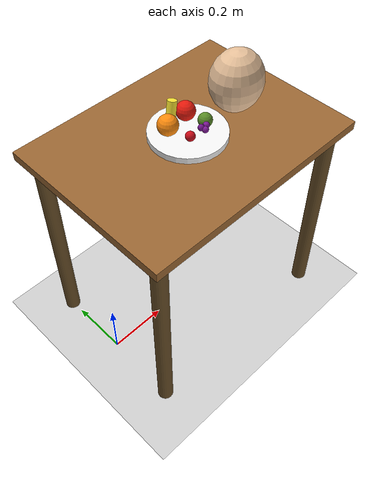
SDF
<?xml version="1.0" ?>
<sdf version="1.8">
  <world name="feeding_world">

    <!-- Physics -->
    <physics name="1ms" type="ignored">
      <max_step_size>0.001</max_step_size>
      <real_time_factor>1.0</real_time_factor>
    </physics>

    <!-- Plugins -->
    <plugin filename="gz-sim-physics-system" name="gz::sim::systems::Physics"/>
    <plugin filename="gz-sim-user-commands-system" name="gz::sim::systems::UserCommands"/>
    <plugin filename="gz-sim-scene-broadcaster-system" name="gz::sim::systems::SceneBroadcaster"/>
    <plugin filename="gz-sim-sensors-system" name="gz::sim::systems::Sensors">
      <render_engine>ogre2</render_engine>
    </plugin>

    <!-- Lighting -->
    <light type="directional" name="sun">
      <cast_shadows>true</cast_shadows>
      <pose>0 0 10 0 0 0</pose>
      <diffuse>0.8 0.8 0.8 1</diffuse>
      <specular>0.2 0.2 0.2 1</specular>
      <attenuation>
        <range>1000</range>
        <constant>0.9</constant>
        <linear>0.01</linear>
        <quadratic>0.001</quadratic>
      </attenuation>
      <direction>-0.5 0.1 -0.9</direction>
    </light>

    <!-- Ground Plane -->
    <model name="ground_plane">
      <static>true</static>
      <link name="link">
        <collision name="collision">
          <geometry>
            <plane>
              <normal>0 0 1</normal>
              <size>10 10</size>
            </plane>
          </geometry>
        </collision>
        <visual name="visual">
          <geometry>
            <plane>
              <normal>0 0 1</normal>
              <size>10 10</size>
            </plane>
          </geometry>
          <material>
            <ambient>0.8 0.8 0.8 1</ambient>
            <diffuse>0.8 0.8 0.8 1</diffuse>
          </material>
        </visual>
      </link>
    </model>

    <!-- ==================== FEEDING TABLE ==================== -->
    <model name="feeding_table">
      <static>true</static>
      <pose>0.35 0 0 0 0 0</pose>

      <!-- Table top -->
      <link name="table_top">
        <pose>0 0 0.74 0 0 0</pose>
        <collision name="collision">
          <geometry>
            <box>
              <size>0.8 0.6 0.03</size>
            </box>
          </geometry>
        </collision>
        <visual name="visual">
          <geometry>
            <box>
              <size>0.8 0.6 0.03</size>
            </box>
          </geometry>
          <material>
            <ambient>0.6 0.4 0.2 1</ambient>
            <diffuse>0.6 0.4 0.2 1</diffuse>
          </material>
        </visual>
      </link>

      <!-- Table legs -->
      <link name="leg1">
        <pose>-0.35 -0.25 0.37 0 0 0</pose>
        <collision name="collision">
          <geometry><cylinder><radius>0.025</radius><length>0.74</length></cylinder></geometry>
        </collision>
        <visual name="visual">
          <geometry><cylinder><radius>0.025</radius><length>0.74</length></cylinder></geometry>
          <material><ambient>0.4 0.3 0.15 1</ambient><diffuse>0.4 0.3 0.15 1</diffuse></material>
        </visual>
      </link>

      <link name="leg2">
        <pose>0.35 -0.25 0.37 0 0 0</pose>
        <collision name="collision">
          <geometry><cylinder><radius>0.025</radius><length>0.74</length></cylinder></geometry>
        </collision>
        <visual name="visual">
          <geometry><cylinder><radius>0.025</radius><length>0.74</length></cylinder></geometry>
          <material><ambient>0.4 0.3 0.15 1</ambient><diffuse>0.4 0.3 0.15 1</diffuse></material>
        </visual>
      </link>

      <link name="leg3">
        <pose>-0.35 0.25 0.37 0 0 0</pose>
        <collision name="collision">
          <geometry><cylinder><radius>0.025</radius><length>0.74</length></cylinder></geometry>
        </collision>
        <visual name="visual">
          <geometry><cylinder><radius>0.025</radius><length>0.74</length></cylinder></geometry>
          <material><ambient>0.4 0.3 0.15 1</ambient><diffuse>0.4 0.3 0.15 1</diffuse></material>
        </visual>
      </link>

      <link name="leg4">
        <pose>0.35 0.25 0.37 0 0 0</pose>
        <collision name="collision">
          <geometry><cylinder><radius>0.025</radius><length>0.74</length></cylinder></geometry>
        </collision>
        <visual name="visual">
          <geometry><cylinder><radius>0.025</radius><length>0.74</length></cylinder></geometry>
          <material><ambient>0.4 0.3 0.15 1</ambient><diffuse>0.4 0.3 0.15 1</diffuse></material>
        </visual>
      </link>

      <joint name="leg1_joint" type="fixed"><parent>table_top</parent><child>leg1</child></joint>
      <joint name="leg2_joint" type="fixed"><parent>table_top</parent><child>leg2</child></joint>
      <joint name="leg3_joint" type="fixed"><parent>table_top</parent><child>leg3</child></joint>
      <joint name="leg4_joint" type="fixed"><parent>table_top</parent><child>leg4</child></joint>
    </model>

    <!-- ==================== PLATE ==================== -->
    <model name="plate">
      <static>true</static>
      <pose>0.35 0 0.77 0 0 0</pose>
      <link name="plate_link">
        <collision name="collision">
          <geometry>
            <cylinder>
              <radius>0.12</radius>
              <length>0.02</length>
            </cylinder>
          </geometry>
        </collision>
        <visual name="visual">
          <geometry>
            <cylinder>
              <radius>0.12</radius>
              <length>0.02</length>
            </cylinder>
          </geometry>
          <material>
            <ambient>0.95 0.95 0.95 1</ambient>
            <diffuse>0.95 0.95 0.95 1</diffuse>
          </material>
        </visual>
      </link>
    </model>

    <!-- ==================== FRUITS ON PLATE ==================== -->

    <!-- Apple (RED) -->
    <model name="apple">
      <static>true</static>
      <pose>0.38 0.04 0.81 0 0 0</pose>
      <link name="apple_link">
        <collision name="collision">
          <geometry><sphere><radius>0.030</radius></sphere></geometry>
        </collision>
        <visual name="visual">
          <geometry><sphere><radius>0.030</radius></sphere></geometry>
          <material>
            <ambient>0.8 0.1 0.05 1</ambient>
            <diffuse>0.9 0.1 0.05 1</diffuse>
            <specular>0.3 0.1 0.1 1</specular>
          </material>
        </visual>
      </link>
    </model>

    <!-- Strawberry (DARK RED) -->
    <model name="strawberry">
      <static>true</static>
      <pose>0.32 -0.04 0.80 0 0 0</pose>
      <link name="strawberry_link">
        <collision name="collision">
          <geometry><sphere><radius>0.015</radius></sphere></geometry>
        </collision>
        <visual name="visual">
          <geometry><sphere><radius>0.015</radius></sphere></geometry>
          <material>
            <ambient>0.7 0.05 0.1 1</ambient>
            <diffuse>0.8 0.05 0.1 1</diffuse>
            <specular>0.3 0.1 0.1 1</specular>
          </material>
        </visual>
      </link>
    </model>

    <!-- Banana (YELLOW) -->
    <model name="banana">
      <static>true</static>
      <pose>0.34 0.06 0.80 0 0.3 0.5</pose>
      <link name="banana_link">
        <collision name="collision">
          <geometry>
            <cylinder>
              <radius>0.015</radius>
              <length>0.10</length>
            </cylinder>
          </geometry>
        </collision>
        <visual name="visual">
          <geometry>
            <cylinder>
              <radius>0.015</radius>
              <length>0.10</length>
            </cylinder>
          </geometry>
          <material>
            <ambient>0.95 0.9 0.15 1</ambient>
            <diffuse>1.0 0.92 0.2 1</diffuse>
            <specular>0.2 0.2 0.05 1</specular>
          </material>
        </visual>
      </link>
    </model>

    <!-- Grape cluster (PURPLE) — 3 small spheres -->
    <model name="grape">
      <static>true</static>
      <pose>0.37 -0.05 0.80 0 0 0</pose>
      <link name="grape_link">
        <collision name="collision">
          <geometry><sphere><radius>0.018</radius></sphere></geometry>
        </collision>
        <visual name="grape1">
          <pose>0 0 0 0 0 0</pose>
          <geometry><sphere><radius>0.010</radius></sphere></geometry>
          <material>
            <ambient>0.4 0.1 0.5 1</ambient>
            <diffuse>0.5 0.1 0.6 1</diffuse>
          </material>
        </visual>
        <visual name="grape2">
          <pose>0.012 0.008 0.005 0 0 0</pose>
          <geometry><sphere><radius>0.010</radius></sphere></geometry>
          <material>
            <ambient>0.4 0.1 0.5 1</ambient>
            <diffuse>0.5 0.1 0.6 1</diffuse>
          </material>
        </visual>
        <visual name="grape3">
          <pose>-0.005 0.012 0.003 0 0 0</pose>
          <geometry><sphere><radius>0.010</radius></sphere></geometry>
          <material>
            <ambient>0.35 0.08 0.45 1</ambient>
            <diffuse>0.45 0.08 0.55 1</diffuse>
          </material>
        </visual>
      </link>
    </model>

    <!-- Orange (ORANGE) -->
    <model name="orange_fruit">
      <static>true</static>
      <pose>0.30 0.03 0.81 0 0 0</pose>
      <link name="orange_link">
        <collision name="collision">
          <geometry><sphere><radius>0.032</radius></sphere></geometry>
        </collision>
        <visual name="visual">
          <geometry><sphere><radius>0.032</radius></sphere></geometry>
          <material>
            <ambient>0.95 0.5 0.05 1</ambient>
            <diffuse>1.0 0.55 0.05 1</diffuse>
            <specular>0.3 0.2 0.05 1</specular>
          </material>
        </visual>
      </link>
    </model>

    <!-- Kiwi (GREEN) -->
    <model name="kiwi">
      <static>true</static>
      <pose>0.40 -0.02 0.80 0 0 0</pose>
      <link name="kiwi_link">
        <collision name="collision">
          <geometry><sphere><radius>0.022</radius></sphere></geometry>
        </collision>
        <visual name="visual">
          <geometry><sphere><radius>0.022</radius></sphere></geometry>
          <material>
            <ambient>0.3 0.5 0.15 1</ambient>
            <diffuse>0.35 0.55 0.15 1</diffuse>
            <specular>0.1 0.15 0.05 1</specular>
          </material>
        </visual>
      </link>
    </model>

    <!-- ==================== PATIENT HEAD WITH ANIMATED JAW ==================== -->
    <!-- Positioned across the table from the robot, facing the robot -->
    <model name="patient_head">
      <pose>0.55 0.0 0.85 0 0 3.14159</pose>

      <!-- Skull (static upper head) -->
      <link name="head_link">
        <inertial>
          <mass>2.0</mass>
          <inertia>
            <ixx>0.005</ixx><iyy>0.005</iyy><izz>0.003</izz>
            <ixy>0</ixy><ixz>0</ixz><iyz>0</iyz>
          </inertia>
        </inertial>
        <collision name="head_collision">
          <geometry>
            <ellipsoid>
              <radii>0.09 0.08 0.10</radii>
            </ellipsoid>
          </geometry>
        </collision>
        <!-- Head sphere -->
        <visual name="head_visual">
          <geometry>
            <ellipsoid>
              <radii>0.09 0.08 0.10</radii>
            </ellipsoid>
          </geometry>
          <material>
            <ambient>0.85 0.72 0.58 1</ambient>
            <diffuse>0.9 0.75 0.6 1</diffuse>
          </material>
        </visual>
        <!-- Left eye -->
        <visual name="left_eye">
          <pose>-0.06 -0.03 0.03 0 0 0</pose>
          <geometry><sphere><radius>0.012</radius></sphere></geometry>
          <material>
            <ambient>0.95 0.95 0.95 1</ambient>
            <diffuse>0.95 0.95 0.95 1</diffuse>
          </material>
        </visual>
        <visual name="left_pupil">
          <pose>-0.07 -0.03 0.03 0 0 0</pose>
          <geometry><sphere><radius>0.006</radius></sphere></geometry>
          <material>
            <ambient>0.1 0.1 0.1 1</ambient>
            <diffuse>0.15 0.15 0.15 1</diffuse>
          </material>
        </visual>
        <!-- Right eye -->
        <visual name="right_eye">
          <pose>-0.06 0.03 0.03 0 0 0</pose>
          <geometry><sphere><radius>0.012</radius></sphere></geometry>
          <material>
            <ambient>0.95 0.95 0.95 1</ambient>
            <diffuse>0.95 0.95 0.95 1</diffuse>
          </material>
        </visual>
        <visual name="right_pupil">
          <pose>-0.07 0.03 0.03 0 0 0</pose>
          <geometry><sphere><radius>0.006</radius></sphere></geometry>
          <material>
            <ambient>0.1 0.1 0.1 1</ambient>
            <diffuse>0.15 0.15 0.15 1</diffuse>
          </material>
        </visual>
        <!-- Nose -->
        <visual name="nose">
          <pose>-0.085 0 0.0 0 0 0</pose>
          <geometry>
            <box><size>0.015 0.018 0.025</size></box>
          </geometry>
          <material>
            <ambient>0.80 0.65 0.52 1</ambient>
            <diffuse>0.85 0.68 0.55 1</diffuse>
          </material>
        </visual>
        <!-- Upper lip (fixed to head) -->
        <visual name="upper_lip">
          <pose>-0.085 0 -0.035 0 0 0</pose>
          <geometry>
            <box><size>0.015 0.04 0.008</size></box>
          </geometry>
          <material>
            <ambient>0.8 0.35 0.3 1</ambient>
            <diffuse>0.85 0.4 0.35 1</diffuse>
          </material>
        </visual>
        <!-- Left mouth corner marker (green for detection) -->
        <visual name="mouth_corner_left">
          <pose>-0.085 -0.022 -0.035 0 0 0</pose>
          <geometry><sphere><radius>0.004</radius></sphere></geometry>
          <material>
            <ambient>0.0 0.8 0.0 1</ambient>
            <diffuse>0.0 0.9 0.0 1</diffuse>
          </material>
        </visual>
        <!-- Right mouth corner marker (green for detection) -->
        <visual name="mouth_corner_right">
          <pose>-0.085 0.022 -0.035 0 0 0</pose>
          <geometry><sphere><radius>0.004</radius></sphere></geometry>
          <material>
            <ambient>0.0 0.8 0.0 1</ambient>
            <diffuse>0.0 0.9 0.0 1</diffuse>
          </material>
        </visual>
        <!-- Neck support (keep head upright) -->
        <visual name="neck">
          <pose>0 0 -0.14 0 0 0</pose>
          <geometry>
            <cylinder><radius>0.035</radius><length>0.08</length></cylinder>
          </geometry>
          <material>
            <ambient>0.80 0.65 0.52 1</ambient>
            <diffuse>0.85 0.68 0.55 1</diffuse>
          </material>
        </visual>
      </link>

      <!-- Lower jaw (animated — rotates to open/close mouth) -->
      <link name="jaw_link">
        <inertial>
          <mass>0.2</mass>
          <inertia>
            <ixx>0.0001</ixx><iyy>0.0002</iyy><izz>0.0001</izz>
            <ixy>0</ixy><ixz>0</ixz><iyz>0</iyz>
          </inertia>
        </inertial>
        <visual name="jaw_visual">
          <pose>-0.02 0 -0.012 0 0 0</pose>
          <geometry>
            <box><size>0.04 0.045 0.025</size></box>
          </geometry>
          <material>
            <ambient>0.82 0.68 0.55 1</ambient>
            <diffuse>0.87 0.72 0.58 1</diffuse>
          </material>
        </visual>
        <!-- Lower lip -->
        <visual name="lower_lip">
          <pose>-0.04 0 -0.003 0 0 0</pose>
          <geometry>
            <box><size>0.015 0.04 0.008</size></box>
          </geometry>
          <material>
            <ambient>0.75 0.3 0.25 1</ambient>
            <diffuse>0.8 0.35 0.3 1</diffuse>
          </material>
        </visual>
        <collision name="jaw_collision">
          <pose>-0.02 0 -0.012 0 0 0</pose>
          <geometry>
            <box><size>0.04 0.045 0.025</size></box>
          </geometry>
        </collision>
      </link>

      <!-- Jaw joint: rotates around Y axis to open/close -->
      <!-- 0 = closed, negative angle = open -->
      <joint name="jaw_joint" type="revolute">
        <parent>head_link</parent>
        <child>jaw_link</child>
        <pose>0 0 0 0 0 0</pose>
        <axis>
          <xyz>0 1 0</xyz>
          <limit>
            <lower>-0.5</lower>   <!-- ~28 degrees open -->
            <upper>0.0</upper>    <!-- closed -->
          </limit>
          <dynamics>
            <damping>0.1</damping>
            <friction>0.05</friction>
          </dynamics>
        </axis>
        <pose relative_to="head_link">-0.06 0 -0.04 0 0 0</pose>
      </joint>

      <!-- Gazebo joint position controller for animated jaw -->
      <plugin filename="gz-sim-joint-position-controller-system"
              name="gz::sim::systems::JointPositionController">
        <joint_name>jaw_joint</joint_name>
        <topic>/patient_head/jaw_cmd</topic>
        <p_gain>5.0</p_gain>
        <i_gain>0.1</i_gain>
        <d_gain>0.5</d_gain>
      </plugin>

      <!-- Fix head to world (patient is seated/stationary) -->
      <joint name="head_to_world" type="fixed">
        <parent>world</parent>
        <child>head_link</child>
      </joint>

    </model>

  </world>
</sdf>
